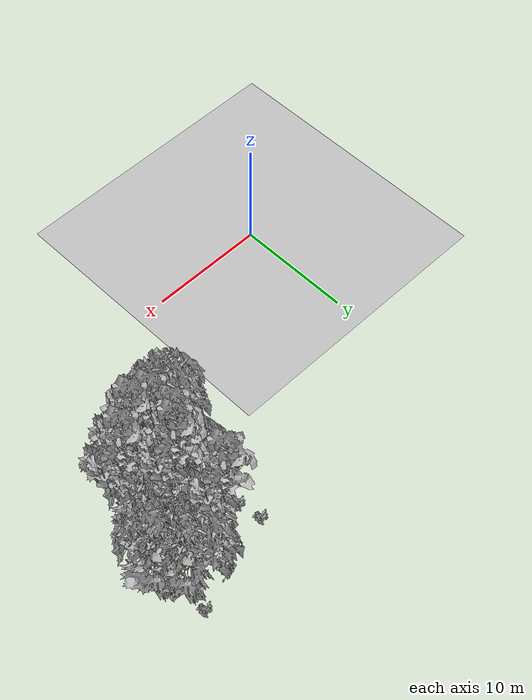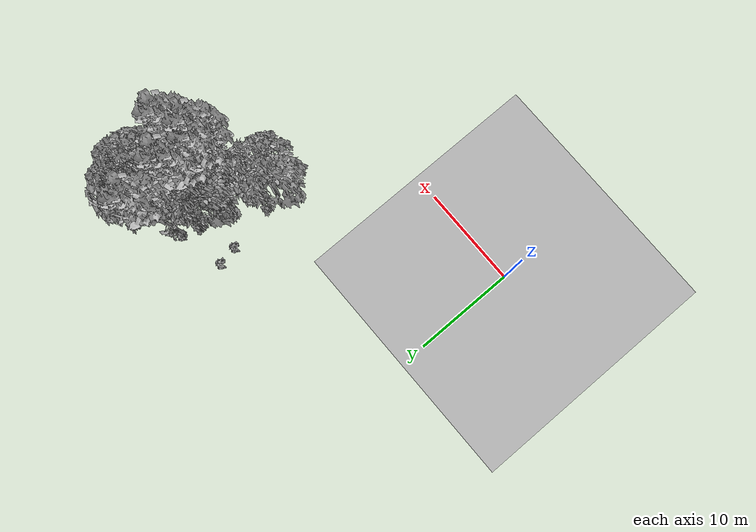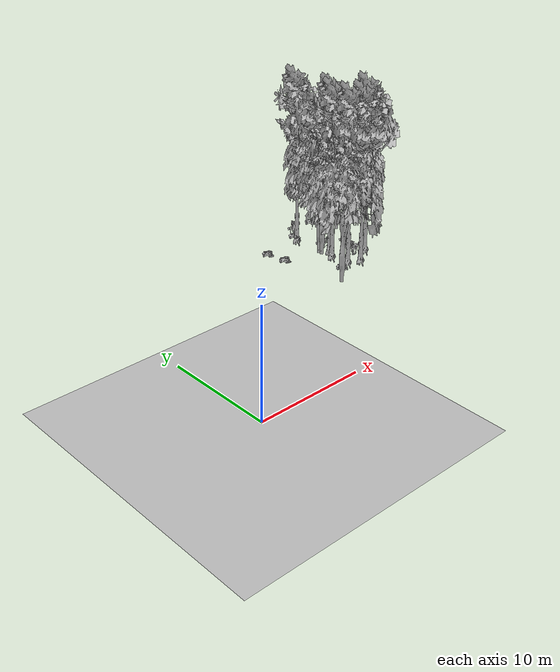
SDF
<sdf version="1.7">
 <world name="default">
  <model name="ground_plane">
   <static>1</static>
   <link name="link">
    <collision name="collision">
     <pose>-50 0 0 0 -0 0</pose>
     <geometry><plane><normal>0 0 1</normal><size>80 80</size></plane></geometry>
     <surface><contact><ode><min_depth>0.01</min_depth><max_vel>0</max_vel></ode></contact></surface>
    </collision>
    <visual name="grass">
     <cast_shadows>0</cast_shadows>
     <geometry>
      <mesh>
       <scale>0.46714285714285714 0.46714285714285714 0.1</scale>
       <uri>file://grass_plane/meshes/grass_plane.dae</uri>
      </mesh>
     </geometry>
    </visual>
   </link>
  </model>
  <model name="Tree 169">
   <static>1</static>
   <pose>23.09856936176392 13.74914635685262 0 1.57079 -0 0</pose>
   <link name="link">
    <collision name="collision">
     <geometry><mesh><scale>3.5 5 3.5</scale><uri>model://tree_9/meshes/tree_9.obj</uri></mesh></geometry>
    </collision>
    <visual name="visual">
     <geometry><mesh><scale>3.5 5 3.5</scale><uri>model://tree_9/meshes/tree_9.obj</uri></mesh></geometry>
    </visual>
   </link>
  </model>
  <model name="Tree 189">
   <static>1</static>
   <pose>26.942596946241906 19.171095184851204 0 1.57079 -0 0</pose>
   <link name="link">
    <collision name="collision">
     <geometry><mesh><scale>3.5 5 3.5</scale><uri>model://tree_2/meshes/tree_2.obj</uri></mesh></geometry>
    </collision>
    <visual name="visual">
     <geometry><mesh><scale>3.5 5 3.5</scale><uri>model://tree_2/meshes/tree_2.obj</uri></mesh></geometry>
    </visual>
   </link>
  </model>
  <model name="Tree 243">
   <static>1</static>
   <pose>19.589829534328665 11.164138952462544 0 1.57079 -0 0</pose>
   <link name="link">
    <collision name="collision">
     <geometry><mesh><scale>3.5 5 3.5</scale><uri>model://tree_2/meshes/tree_2.obj</uri></mesh></geometry>
    </collision>
    <visual name="visual">
     <geometry><mesh><scale>3.5 5 3.5</scale><uri>model://tree_2/meshes/tree_2.obj</uri></mesh></geometry>
    </visual>
   </link>
  </model>
  <model name="Tree 266">
   <static>1</static>
   <pose>24.585419813311262 15.610274091084719 0 1.57079 -0 0</pose>
   <link name="link">
    <collision name="collision">
     <geometry><mesh><scale>3.5 5 3.5</scale><uri>model://tree_2/meshes/tree_2.obj</uri></mesh></geometry>
    </collision>
    <visual name="visual">
     <geometry><mesh><scale>3.5 5 3.5</scale><uri>model://tree_2/meshes/tree_2.obj</uri></mesh></geometry>
    </visual>
   </link>
  </model>
  <model name="Tree 278">
   <static>1</static>
   <pose>22.722680918564315 20.336391665651945 0 1.57079 -0 0</pose>
   <link name="link">
    <collision name="collision">
     <geometry><mesh><scale>3.5 5 3.5</scale><uri>model://tree_9/meshes/tree_9.obj</uri></mesh></geometry>
    </collision>
    <visual name="visual">
     <geometry><mesh><scale>3.5 5 3.5</scale><uri>model://tree_9/meshes/tree_9.obj</uri></mesh></geometry>
    </visual>
   </link>
  </model>
  <model name="Tree 294">
   <static>1</static>
   <pose>23.43833243215176 16.533258870735295 0 1.57079 -0 0</pose>
   <link name="link">
    <collision name="collision">
     <geometry><mesh><scale>3.5 5 3.5</scale><uri>model://tree_9/meshes/tree_9.obj</uri></mesh></geometry>
    </collision>
    <visual name="visual">
     <geometry><mesh><scale>3.5 5 3.5</scale><uri>model://tree_9/meshes/tree_9.obj</uri></mesh></geometry>
    </visual>
   </link>
  </model>
  <model name="Tree 318">
   <static>1</static>
   <pose>22.071043058398068 16.27227019407463 0 1.57079 -0 0</pose>
   <link name="link">
    <collision name="collision">
     <geometry><mesh><scale>3.5 5 3.5</scale><uri>model://tree_2/meshes/tree_2.obj</uri></mesh></geometry>
    </collision>
    <visual name="visual">
     <geometry><mesh><scale>3.5 5 3.5</scale><uri>model://tree_2/meshes/tree_2.obj</uri></mesh></geometry>
    </visual>
   </link>
  </model>
  <model name="Tree 387">
   <static>1</static>
   <pose>23.688369820850674 15.037854133497618 0 1.57079 -0 0</pose>
   <link name="link">
    <collision name="collision">
     <geometry><mesh><scale>3.5 5 3.5</scale><uri>model://tree_2/meshes/tree_2.obj</uri></mesh></geometry>
    </collision>
    <visual name="visual">
     <geometry><mesh><scale>3.5 5 3.5</scale><uri>model://tree_2/meshes/tree_2.obj</uri></mesh></geometry>
    </visual>
   </link>
  </model>
  <model name="Tree 443">
   <static>1</static>
   <pose>24.313798717135498 13.262989590848761 0 1.57079 -0 0</pose>
   <link name="link">
    <collision name="collision">
     <geometry><mesh><scale>3.5 5 3.5</scale><uri>model://tree_9/meshes/tree_9.obj</uri></mesh></geometry>
    </collision>
    <visual name="visual">
     <geometry><mesh><scale>3.5 5 3.5</scale><uri>model://tree_9/meshes/tree_9.obj</uri></mesh></geometry>
    </visual>
   </link>
  </model>
  <model name="Tree 489">
   <static>1</static>
   <pose>26.218116959206398 14.529422992190355 0 1.57079 -0 0</pose>
   <link name="link">
    <collision name="collision">
     <geometry><mesh><scale>3.5 5 3.5</scale><uri>model://tree_9/meshes/tree_9.obj</uri></mesh></geometry>
    </collision>
    <visual name="visual">
     <geometry><mesh><scale>3.5 5 3.5</scale><uri>model://tree_9/meshes/tree_9.obj</uri></mesh></geometry>
    </visual>
   </link>
  </model>
  <model name="Tree 523">
   <static>1</static>
   <pose>22.833723310025597 15.614776401056353 0 1.57079 -0 0</pose>
   <link name="link">
    <collision name="collision">
     <geometry><mesh><scale>3.5 5 3.5</scale><uri>model://tree_9/meshes/tree_9.obj</uri></mesh></geometry>
    </collision>
    <visual name="visual">
     <geometry><mesh><scale>3.5 5 3.5</scale><uri>model://tree_9/meshes/tree_9.obj</uri></mesh></geometry>
    </visual>
   </link>
  </model>
  <model name="Tree 538">
   <static>1</static>
   <pose>25.736192973259165 20.735115851205165 0 1.57079 -0 0</pose>
   <link name="link">
    <collision name="collision">
     <geometry><mesh><scale>3.5 5 3.5</scale><uri>model://tree_2/meshes/tree_2.obj</uri></mesh></geometry>
    </collision>
    <visual name="visual">
     <geometry><mesh><scale>3.5 5 3.5</scale><uri>model://tree_2/meshes/tree_2.obj</uri></mesh></geometry>
    </visual>
   </link>
  </model>
  <model name="Tree 546">
   <static>1</static>
   <pose>22.047756819505217 16.594385789954742 0 1.57079 -0 0</pose>
   <link name="link">
    <collision name="collision">
     <geometry><mesh><scale>3.5 5 3.5</scale><uri>model://tree_2/meshes/tree_2.obj</uri></mesh></geometry>
    </collision>
    <visual name="visual">
     <geometry><mesh><scale>3.5 5 3.5</scale><uri>model://tree_2/meshes/tree_2.obj</uri></mesh></geometry>
    </visual>
   </link>
  </model>
  <model name="Bush 162">
   <static>1</static>
   <pose>18.058669274896175 19.368381291135435 0 1.57079 -0 0</pose>
   <link name="link">
    <collision name="collision">
     <geometry><mesh><scale>2 2 2</scale><uri>model://bush_2/meshes/bush_2.obj</uri></mesh></geometry>
     <surface><contact><collide_without_contact>false</collide_without_contact></contact></surface>
    </collision>
    <visual name="visual">
     <geometry><mesh><scale>2 2 2</scale><uri>model://bush_2/meshes/bush_2.obj</uri></mesh></geometry>
    </visual>
   </link>
  </model>
  <model name="Bush 164">
   <static>1</static>
   <pose>26.940168867460898 19.67497727575389 0 1.57079 -0 0</pose>
   <link name="link">
    <collision name="collision">
     <geometry><mesh><scale>2 2 2</scale><uri>model://bush_0/meshes/bush_0.obj</uri></mesh></geometry>
     <surface><contact><collide_without_contact>false</collide_without_contact></contact></surface>
    </collision>
    <visual name="visual">
     <geometry><mesh><scale>2 2 2</scale><uri>model://bush_0/meshes/bush_0.obj</uri></mesh></geometry>
    </visual>
   </link>
  </model>
  <model name="Bush 188">
   <static>1</static>
   <pose>22.92085440170785 16.95004628528107 0 1.57079 -0 0</pose>
   <link name="link">
    <collision name="collision">
     <geometry><mesh><scale>2 2 2</scale><uri>model://bush_4/meshes/bush_4.obj</uri></mesh></geometry>
     <surface><contact><collide_without_contact>false</collide_without_contact></contact></surface>
    </collision>
    <visual name="visual">
     <geometry><mesh><scale>2 2 2</scale><uri>model://bush_4/meshes/bush_4.obj</uri></mesh></geometry>
    </visual>
   </link>
  </model>
  <model name="Bush 223">
   <static>1</static>
   <pose>18.44839151900525 17.429324514837177 0 1.57079 -0 0</pose>
   <link name="link">
    <collision name="collision">
     <geometry><mesh><scale>2 2 2</scale><uri>model://bush_2/meshes/bush_2.obj</uri></mesh></geometry>
     <surface><contact><collide_without_contact>false</collide_without_contact></contact></surface>
    </collision>
    <visual name="visual">
     <geometry><mesh><scale>2 2 2</scale><uri>model://bush_2/meshes/bush_2.obj</uri></mesh></geometry>
    </visual>
   </link>
  </model>
  <model name="Bush 258">
   <static>1</static>
   <pose>25.929505594741315 21.7690952323209 0 1.57079 -0 0</pose>
   <link name="link">
    <collision name="collision">
     <geometry><mesh><scale>2 2 2</scale><uri>model://bush_2/meshes/bush_2.obj</uri></mesh></geometry>
     <surface><contact><collide_without_contact>false</collide_without_contact></contact></surface>
    </collision>
    <visual name="visual">
     <geometry><mesh><scale>2 2 2</scale><uri>model://bush_2/meshes/bush_2.obj</uri></mesh></geometry>
    </visual>
   </link>
  </model>
  <model name="Bush 276">
   <static>1</static>
   <pose>25.13779052144909 16.00759610419395 0 1.57079 -0 0</pose>
   <link name="link">
    <collision name="collision">
     <geometry><mesh><scale>2 2 2</scale><uri>model://bush_4/meshes/bush_4.obj</uri></mesh></geometry>
     <surface><contact><collide_without_contact>false</collide_without_contact></contact></surface>
    </collision>
    <visual name="visual">
     <geometry><mesh><scale>2 2 2</scale><uri>model://bush_4/meshes/bush_4.obj</uri></mesh></geometry>
    </visual>
   </link>
  </model>
  <model name="Bush 385">
   <static>1</static>
   <pose>24.28011186373196 14.090098878488647 0 1.57079 -0 0</pose>
   <link name="link">
    <collision name="collision">
     <geometry><mesh><scale>2 2 2</scale><uri>model://bush_4/meshes/bush_4.obj</uri></mesh></geometry>
     <surface><contact><collide_without_contact>false</collide_without_contact></contact></surface>
    </collision>
    <visual name="visual">
     <geometry><mesh><scale>2 2 2</scale><uri>model://bush_4/meshes/bush_4.obj</uri></mesh></geometry>
    </visual>
   </link>
  </model>
  <model name="Bush 401">
   <static>1</static>
   <pose>23.053718719132362 20.984000326866123 0 1.57079 -0 0</pose>
   <link name="link">
    <collision name="collision">
     <geometry><mesh><scale>2 2 2</scale><uri>model://bush_4/meshes/bush_4.obj</uri></mesh></geometry>
     <surface><contact><collide_without_contact>false</collide_without_contact></contact></surface>
    </collision>
    <visual name="visual">
     <geometry><mesh><scale>2 2 2</scale><uri>model://bush_4/meshes/bush_4.obj</uri></mesh></geometry>
    </visual>
   </link>
  </model>
  <model name="Bush 423">
   <static>1</static>
   <pose>22.542030406349042 20.5124172706412 0 1.57079 -0 0</pose>
   <link name="link">
    <collision name="collision">
     <geometry><mesh><scale>2 2 2</scale><uri>model://bush_2/meshes/bush_2.obj</uri></mesh></geometry>
     <surface><contact><collide_without_contact>false</collide_without_contact></contact></surface>
    </collision>
    <visual name="visual">
     <geometry><mesh><scale>2 2 2</scale><uri>model://bush_2/meshes/bush_2.obj</uri></mesh></geometry>
    </visual>
   </link>
  </model>
  <model name="Bush 448">
   <static>1</static>
   <pose>21.479674302978438 12.914378842612486 0 1.57079 -0 0</pose>
   <link name="link">
    <collision name="collision">
     <geometry><mesh><scale>2 2 2</scale><uri>model://bush_2/meshes/bush_2.obj</uri></mesh></geometry>
     <surface><contact><collide_without_contact>false</collide_without_contact></contact></surface>
    </collision>
    <visual name="visual">
     <geometry><mesh><scale>2 2 2</scale><uri>model://bush_2/meshes/bush_2.obj</uri></mesh></geometry>
    </visual>
   </link>
  </model>
 </world>
</sdf>
